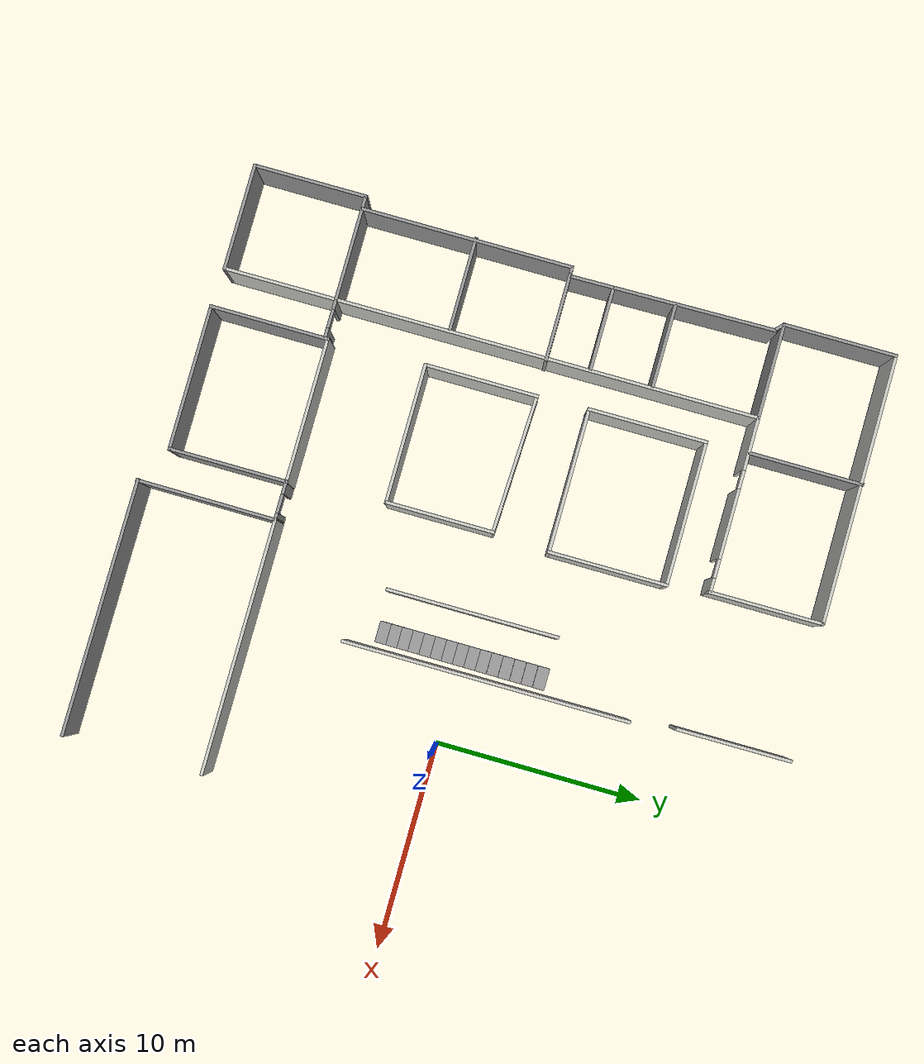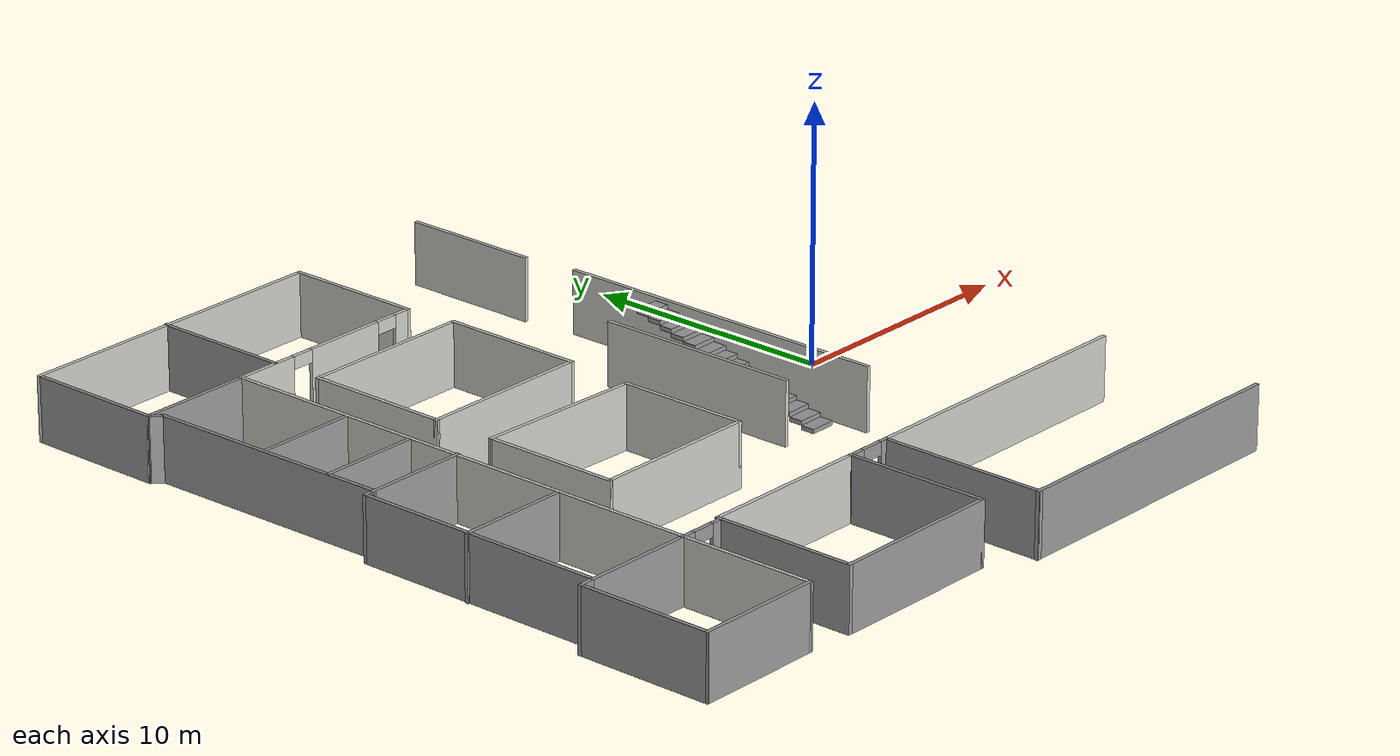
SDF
<sdf version="1.6">
 <model name="b1">
  <pose>-0.20488 -0.299258 0 0 -0 0</pose>
  <link name="Stairs_0">
   <visual name="Stairs_0_Visual_0">
    <pose>-4.10055 -3.51145 0.083333 0 -0 -3.14159</pose>
    <geometry><box><size>1.0342 0.547943 0.166667</size></box></geometry>
    <material>
     <script><uri>file://media/materials/scripts/gazebo.material</uri><name>Gazebo/Grey</name></script>
     <ambient>1 1 1 1</ambient>
    </material>
   </visual>
   <collision name="Stairs_0_Collision_0">
    <geometry><box><size>1.0342 0.547943 0.166667</size></box></geometry>
    <pose>-4.10055 -3.51145 0.083333 0 -0 -3.14159</pose>
   </collision>
   <visual name="Stairs_0_Visual_1">
    <pose>-4.10055 -2.96351 0.25 0 -0 -3.14159</pose>
    <geometry><box><size>1.0342 0.547943 0.166667</size></box></geometry>
    <material>
     <script><uri>file://media/materials/scripts/gazebo.material</uri><name>Gazebo/Grey</name></script>
     <ambient>1 1 1 1</ambient>
    </material>
   </visual>
   <collision name="Stairs_0_Collision_1">
    <geometry><box><size>1.0342 0.547943 0.166667</size></box></geometry>
    <pose>-4.10055 -2.96351 0.25 0 -0 -3.14159</pose>
   </collision>
   <visual name="Stairs_0_Visual_2">
    <pose>-4.10055 -2.41556 0.416667 0 -0 -3.14159</pose>
    <geometry><box><size>1.0342 0.547943 0.166667</size></box></geometry>
    <material>
     <script><uri>file://media/materials/scripts/gazebo.material</uri><name>Gazebo/Grey</name></script>
     <ambient>1 1 1 1</ambient>
    </material>
   </visual>
   <collision name="Stairs_0_Collision_2">
    <geometry><box><size>1.0342 0.547943 0.166667</size></box></geometry>
    <pose>-4.10055 -2.41556 0.416667 0 -0 -3.14159</pose>
   </collision>
   <visual name="Stairs_0_Visual_3">
    <pose>-4.10055 -1.86762 0.583333 0 -0 -3.14159</pose>
    <geometry><box><size>1.0342 0.547943 0.166667</size></box></geometry>
    <material>
     <script><uri>file://media/materials/scripts/gazebo.material</uri><name>Gazebo/Grey</name></script>
     <ambient>1 1 1 1</ambient>
    </material>
   </visual>
   <collision name="Stairs_0_Collision_3">
    <geometry><box><size>1.0342 0.547943 0.166667</size></box></geometry>
    <pose>-4.10055 -1.86762 0.583333 0 -0 -3.14159</pose>
   </collision>
   <visual name="Stairs_0_Visual_4">
    <pose>-4.10055 -1.31967 0.75 0 -0 -3.14159</pose>
    <geometry><box><size>1.0342 0.547943 0.166667</size></box></geometry>
    <material>
     <script><uri>file://media/materials/scripts/gazebo.material</uri><name>Gazebo/Grey</name></script>
     <ambient>1 1 1 1</ambient>
    </material>
   </visual>
   <collision name="Stairs_0_Collision_4">
    <geometry><box><size>1.0342 0.547943 0.166667</size></box></geometry>
    <pose>-4.10055 -1.31967 0.75 0 -0 -3.14159</pose>
   </collision>
   <visual name="Stairs_0_Visual_5">
    <pose>-4.10055 -0.771732 0.916667 0 -0 -3.14159</pose>
    <geometry><box><size>1.0342 0.547943 0.166667</size></box></geometry>
    <material>
     <script><uri>file://media/materials/scripts/gazebo.material</uri><name>Gazebo/Grey</name></script>
     <ambient>1 1 1 1</ambient>
    </material>
   </visual>
   <collision name="Stairs_0_Collision_5">
    <geometry><box><size>1.0342 0.547943 0.166667</size></box></geometry>
    <pose>-4.10055 -0.771732 0.916667 0 -0 -3.14159</pose>
   </collision>
   <visual name="Stairs_0_Visual_6">
    <pose>-4.10055 -0.223788 1.08333 0 -0 -3.14159</pose>
    <geometry><box><size>1.0342 0.547943 0.166667</size></box></geometry>
    <material>
     <script><uri>file://media/materials/scripts/gazebo.material</uri><name>Gazebo/Grey</name></script>
     <ambient>1 1 1 1</ambient>
    </material>
   </visual>
   <collision name="Stairs_0_Collision_6">
    <geometry><box><size>1.0342 0.547943 0.166667</size></box></geometry>
    <pose>-4.10055 -0.223788 1.08333 0 -0 -3.14159</pose>
   </collision>
   <visual name="Stairs_0_Visual_7">
    <pose>-4.10055 0.324155 1.25 0 -0 -3.14159</pose>
    <geometry><box><size>1.0342 0.547943 0.166667</size></box></geometry>
    <material>
     <script><uri>file://media/materials/scripts/gazebo.material</uri><name>Gazebo/Grey</name></script>
     <ambient>1 1 1 1</ambient>
    </material>
   </visual>
   <collision name="Stairs_0_Collision_7">
    <geometry><box><size>1.0342 0.547943 0.166667</size></box></geometry>
    <pose>-4.10055 0.324155 1.25 0 -0 -3.14159</pose>
   </collision>
   <visual name="Stairs_0_Visual_8">
    <pose>-4.10055 0.872098 1.41667 0 -0 -3.14159</pose>
    <geometry><box><size>1.0342 0.547943 0.166667</size></box></geometry>
    <material>
     <script><uri>file://media/materials/scripts/gazebo.material</uri><name>Gazebo/Grey</name></script>
     <ambient>1 1 1 1</ambient>
    </material>
   </visual>
   <collision name="Stairs_0_Collision_8">
    <geometry><box><size>1.0342 0.547943 0.166667</size></box></geometry>
    <pose>-4.10055 0.872098 1.41667 0 -0 -3.14159</pose>
   </collision>
   <visual name="Stairs_0_Visual_9">
    <pose>-4.10055 1.42004 1.58333 0 -0 -3.14159</pose>
    <geometry><box><size>1.0342 0.547943 0.166667</size></box></geometry>
    <material>
     <script><uri>file://media/materials/scripts/gazebo.material</uri><name>Gazebo/Grey</name></script>
     <ambient>1 1 1 1</ambient>
    </material>
   </visual>
   <collision name="Stairs_0_Collision_9">
    <geometry><box><size>1.0342 0.547943 0.166667</size></box></geometry>
    <pose>-4.10055 1.42004 1.58333 0 -0 -3.14159</pose>
   </collision>
   <visual name="Stairs_0_Visual_10">
    <pose>-4.10055 1.96799 1.75 0 -0 -3.14159</pose>
    <geometry><box><size>1.0342 0.547943 0.166667</size></box></geometry>
    <material>
     <script><uri>file://media/materials/scripts/gazebo.material</uri><name>Gazebo/Grey</name></script>
     <ambient>1 1 1 1</ambient>
    </material>
   </visual>
   <collision name="Stairs_0_Collision_10">
    <geometry><box><size>1.0342 0.547943 0.166667</size></box></geometry>
    <pose>-4.10055 1.96799 1.75 0 -0 -3.14159</pose>
   </collision>
   <visual name="Stairs_0_Visual_11">
    <pose>-4.10055 2.51593 1.91667 0 -0 -3.14159</pose>
    <geometry><box><size>1.0342 0.547943 0.166667</size></box></geometry>
    <material>
     <script><uri>file://media/materials/scripts/gazebo.material</uri><name>Gazebo/Grey</name></script>
     <ambient>1 1 1 1</ambient>
    </material>
   </visual>
   <collision name="Stairs_0_Collision_11">
    <geometry><box><size>1.0342 0.547943 0.166667</size></box></geometry>
    <pose>-4.10055 2.51593 1.91667 0 -0 -3.14159</pose>
   </collision>
   <visual name="Stairs_0_Visual_12">
    <pose>-4.10055 3.06387 2.08333 0 -0 -3.14159</pose>
    <geometry><box><size>1.0342 0.547943 0.166667</size></box></geometry>
    <material>
     <script><uri>file://media/materials/scripts/gazebo.material</uri><name>Gazebo/Grey</name></script>
     <ambient>1 1 1 1</ambient>
    </material>
   </visual>
   <collision name="Stairs_0_Collision_12">
    <geometry><box><size>1.0342 0.547943 0.166667</size></box></geometry>
    <pose>-4.10055 3.06387 2.08333 0 -0 -3.14159</pose>
   </collision>
   <visual name="Stairs_0_Visual_13">
    <pose>-4.10055 3.61181 2.25 0 -0 -3.14159</pose>
    <geometry><box><size>1.0342 0.547943 0.166667</size></box></geometry>
    <material>
     <script><uri>file://media/materials/scripts/gazebo.material</uri><name>Gazebo/Grey</name></script>
     <ambient>1 1 1 1</ambient>
    </material>
   </visual>
   <collision name="Stairs_0_Collision_13">
    <geometry><box><size>1.0342 0.547943 0.166667</size></box></geometry>
    <pose>-4.10055 3.61181 2.25 0 -0 -3.14159</pose>
   </collision>
   <visual name="Stairs_0_Visual_14">
    <pose>-4.10055 4.15976 2.41667 0 -0 -3.14159</pose>
    <geometry><box><size>1.0342 0.547943 0.166667</size></box></geometry>
    <material>
     <script><uri>file://media/materials/scripts/gazebo.material</uri><name>Gazebo/Grey</name></script>
     <ambient>1 1 1 1</ambient>
    </material>
   </visual>
   <collision name="Stairs_0_Collision_14">
    <geometry><box><size>1.0342 0.547943 0.166667</size></box></geometry>
    <pose>-4.10055 4.15976 2.41667 0 -0 -3.14159</pose>
   </collision>
  </link>
  <link name="Wall_0">
   <collision name="Wall_0_Collision">
    <geometry><box><size>25.75 0.15 2.5</size></box></geometry>
    <pose>0 0 1.25 0 -0 0</pose>
   </collision>
   <visual name="Wall_0_Visual">
    <pose>0 0 1.25 0 -0 0</pose>
    <geometry><box><size>25.75 0.15 2.5</size></box></geometry>
    <material>
     <script><uri>file://media/materials/scripts/gazebo.material</uri><name>Gazebo/CeilingTiled</name></script>
     <ambient>1 1 1 1</ambient>
    </material>
   </visual>
   <pose>-18.3333 -2.23544 0 0 0 -1.5708</pose>
  </link>
  <link name="Wall_10">
   <collision name="Wall_10_Collision">
    <geometry><box><size>12.2312 0.15 2.5</size></box></geometry>
    <pose>0 0 1.25 0 -0 0</pose>
   </collision>
   <visual name="Wall_10_Visual">
    <pose>0 0 1.25 0 -0 0</pose>
    <geometry><box><size>12.2312 0.15 2.5</size></box></geometry>
    <material>
     <script><uri>file://media/materials/scripts/gazebo.material</uri><name>Gazebo/CeilingTiled</name></script>
     <ambient>1 1 1 1</ambient>
    </material>
   </visual>
   <pose>-1.74049 -9.5555 0 0 -0 0</pose>
  </link>
  <link name="Wall_12">
   <collision name="Wall_12_Collision">
    <geometry><box><size>12.2877 0.15 2.5</size></box></geometry>
    <pose>0 0 1.25 0 -0 0</pose>
   </collision>
   <visual name="Wall_12_Visual">
    <pose>0 0 1.25 0 -0 0</pose>
    <geometry><box><size>12.2877 0.15 2.5</size></box></geometry>
    <material>
     <script><uri>file://media/materials/scripts/gazebo.material</uri><name>Gazebo/Grey</name></script>
     <ambient>1 1 1 1</ambient>
    </material>
   </visual>
   <pose>-1.74989 -16.1555 0 0 -0 3.13849</pose>
  </link>
  <link name="Wall_13">
   <collision name="Wall_13_Collision">
    <geometry><box><size>6.75 0.15 2.5</size></box></geometry>
    <pose>0 0 1.25 0 -0 0</pose>
   </collision>
   <visual name="Wall_13_Visual">
    <pose>0 0 1.25 0 -0 0</pose>
    <geometry><box><size>6.75 0.15 2.5</size></box></geometry>
    <material>
     <script><uri>file://media/materials/scripts/gazebo.material</uri><name>Gazebo/Grey</name></script>
     <ambient>1 1 1 1</ambient>
    </material>
   </visual>
   <pose>-7.78109 -12.8555 0 0 -0 1.5651</pose>
  </link>
  <link name="Wall_2">
   <collision name="Wall_2_Collision">
    <geometry><box><size>5.5 0.15 2.5</size></box></geometry>
    <pose>0 0 1.25 0 -0 0</pose>
   </collision>
   <visual name="Wall_2_Visual">
    <pose>0 0 1.25 0 -0 0</pose>
    <geometry><box><size>5.5 0.15 2.5</size></box></geometry>
    <material>
     <script><uri>file://media/materials/scripts/gazebo.material</uri><name>Gazebo/CeilingTiled</name></script>
     <ambient>1 1 1 1</ambient>
    </material>
   </visual>
   <pose>-3.54517 13.4609 0 0 0 -1.5708</pose>
  </link>
  <link name="Wall_21">
   <collision name="Wall_21_Collision">
    <geometry><box><size>13.75 0.15 2.5</size></box></geometry>
    <pose>0 0 1.25 0 -0 0</pose>
   </collision>
   <visual name="Wall_21_Visual">
    <pose>0 0 1.25 0 -0 0</pose>
    <geometry><box><size>13.75 0.15 2.5</size></box></geometry>
    <material>
     <script><uri>file://media/materials/scripts/gazebo.material</uri><name>Gazebo/CeilingTiled</name></script>
     <ambient>1 1 1 1</ambient>
    </material>
   </visual>
   <pose>-3.26078 1.76065 0 0 -0 1.5708</pose>
  </link>
  <link name="Wall_25">
   <pose>-14.1583 10.5646 0 0 -0 0</pose>
   <visual name="Wall_25_Visual_0">
    <pose>-2.95406 0 1.25 0 -0 0</pose>
    <geometry><box><size>2.59187 0.15 2.5</size></box></geometry>
    <material>
     <script><uri>file://media/materials/scripts/gazebo.material</uri><name>Gazebo/CeilingTiled</name></script>
     <ambient>1 1 1 1</ambient>
    </material>
   </visual>
   <collision name="Wall_25_Collision_0">
    <geometry><box><size>2.59187 0.15 2.5</size></box></geometry>
    <pose>-2.95406 0 1.25 0 -0 0</pose>
   </collision>
   <visual name="Wall_25_Visual_1">
    <pose>0.915135 0 1.25 0 -0 0</pose>
    <geometry><box><size>3.34653 0.15 2.5</size></box></geometry>
    <material>
     <script><uri>file://media/materials/scripts/gazebo.material</uri><name>Gazebo/CeilingTiled</name></script>
     <ambient>1 1 1 1</ambient>
    </material>
   </visual>
   <collision name="Wall_25_Collision_1">
    <geometry><box><size>3.34653 0.15 2.5</size></box></geometry>
    <pose>0.915135 0 1.25 0 -0 0</pose>
   </collision>
   <visual name="Wall_25_Visual_2">
    <pose>3.8692 0 1.25 0 -0 0</pose>
    <geometry><box><size>0.7616 0.15 2.5</size></box></geometry>
    <material>
     <script><uri>file://media/materials/scripts/gazebo.material</uri><name>Gazebo/CeilingTiled</name></script>
     <ambient>1 1 1 1</ambient>
    </material>
   </visual>
   <collision name="Wall_25_Collision_2">
    <geometry><box><size>0.7616 0.15 2.5</size></box></geometry>
    <pose>3.8692 0 1.25 0 -0 0</pose>
   </collision>
   <visual name="Wall_25_Visual_3">
    <pose>-1.20813 0 2.25 0 -0 0</pose>
    <geometry><box><size>0.9 0.15 0.5</size></box></geometry>
    <material>
     <script><uri>file://media/materials/scripts/gazebo.material</uri><name>Gazebo/CeilingTiled</name></script>
     <ambient>1 1 1 1</ambient>
    </material>
   </visual>
   <collision name="Wall_25_Collision_3">
    <geometry><box><size>0.9 0.15 0.5</size></box></geometry>
    <pose>-1.20813 0 2.25 0 -0 0</pose>
   </collision>
   <visual name="Wall_25_Visual_4">
    <pose>3.0384 0 2.25 0 -0 0</pose>
    <geometry><box><size>0.9 0.15 0.5</size></box></geometry>
    <material>
     <script><uri>file://media/materials/scripts/gazebo.material</uri><name>Gazebo/CeilingTiled</name></script>
     <ambient>1 1 1 1</ambient>
    </material>
   </visual>
   <collision name="Wall_25_Collision_4">
    <geometry><box><size>0.9 0.15 0.5</size></box></geometry>
    <pose>3.0384 0 2.25 0 -0 0</pose>
   </collision>
  </link>
  <link name="Wall_26">
   <collision name="Wall_26_Collision">
    <geometry><box><size>5.5 0.15 2.5</size></box></geometry>
    <pose>0 0 1.25 0 -0 0</pose>
   </collision>
   <visual name="Wall_26_Visual">
    <pose>0 0 1.25 0 -0 0</pose>
    <geometry><box><size>5.5 0.15 2.5</size></box></geometry>
    <material>
     <script><uri>file://media/materials/scripts/gazebo.material</uri><name>Gazebo/CeilingTiled</name></script>
     <ambient>1 1 1 1</ambient>
    </material>
   </visual>
   <pose>-9.98326 13.2396 0 0 -0 1.5708</pose>
  </link>
  <link name="Wall_27">
   <collision name="Wall_27_Collision">
    <geometry><box><size>13 0.15 2.5</size></box></geometry>
    <pose>0 0 1.25 0 -0 0</pose>
   </collision>
   <visual name="Wall_27_Visual">
    <pose>0 0 1.25 0 -0 0</pose>
    <geometry><box><size>13 0.15 2.5</size></box></geometry>
    <material>
     <script><uri>file://media/materials/scripts/gazebo.material</uri><name>Gazebo/CeilingTiled</name></script>
     <ambient>1 1 1 1</ambient>
    </material>
   </visual>
   <pose>-16.4083 15.9146 0 0 -0 3.14159</pose>
  </link>
  <link name="Wall_29">
   <collision name="Wall_29_Collision">
    <geometry><box><size>5.5 0.15 2.5</size></box></geometry>
    <pose>0 0 1.25 0 -0 0</pose>
   </collision>
   <visual name="Wall_29_Visual">
    <pose>0 0 1.25 0 -0 0</pose>
    <geometry><box><size>5.5 0.15 2.5</size></box></geometry>
    <material>
     <script><uri>file://media/materials/scripts/gazebo.material</uri><name>Gazebo/CeilingTiled</name></script>
     <ambient>1 1 1 1</ambient>
    </material>
   </visual>
   <pose>-16.5334 -2.20008 0 0 0 -1.5708</pose>
  </link>
  <link name="Wall_30">
   <collision name="Wall_30_Collision">
    <geometry><box><size>6.75 0.15 2.5</size></box></geometry>
    <pose>0 0 1.25 0 -0 0</pose>
   </collision>
   <visual name="Wall_30_Visual">
    <pose>0 0 1.25 0 -0 0</pose>
    <geometry><box><size>6.75 0.15 2.5</size></box></geometry>
    <material>
     <script><uri>file://media/materials/scripts/gazebo.material</uri><name>Gazebo/CeilingTiled</name></script>
     <ambient>1 1 1 1</ambient>
    </material>
   </visual>
   <pose>-13.2334 -4.87508 0 0 -0 0</pose>
  </link>
  <link name="Wall_31">
   <collision name="Wall_31_Collision">
    <geometry><box><size>5.25 0.15 2.5</size></box></geometry>
    <pose>0 0 1.25 0 -0 0</pose>
   </collision>
   <visual name="Wall_31_Visual">
    <pose>0 0 1.25 0 -0 0</pose>
    <geometry><box><size>5.25 0.15 2.5</size></box></geometry>
    <material>
     <script><uri>file://media/materials/scripts/gazebo.material</uri><name>Gazebo/CeilingTiled</name></script>
     <ambient>1 1 1 1</ambient>
    </material>
   </visual>
   <pose>-9.93335 -2.32508 0 0 -0 1.5708</pose>
  </link>
  <link name="Wall_32">
   <collision name="Wall_32_Collision">
    <geometry><box><size>6.75473 0.15 2.5</size></box></geometry>
    <pose>0 0 1.25 0 -0 0</pose>
   </collision>
   <visual name="Wall_32_Visual">
    <pose>0 0 1.25 0 -0 0</pose>
    <geometry><box><size>6.75473 0.15 2.5</size></box></geometry>
    <material>
     <script><uri>file://media/materials/scripts/gazebo.material</uri><name>Gazebo/CeilingTiled</name></script>
     <ambient>1 1 1 1</ambient>
    </material>
   </visual>
   <pose>-13.2334 0.349923 0 0 -0 3.10373</pose>
  </link>
  <link name="Wall_34">
   <collision name="Wall_34_Collision">
    <geometry><box><size>7 0.15 2.5</size></box></geometry>
    <pose>0 0 1.25 0 -0 0</pose>
   </collision>
   <visual name="Wall_34_Visual">
    <pose>0 0 1.25 0 -0 0</pose>
    <geometry><box><size>7 0.15 2.5</size></box></geometry>
    <material>
     <script><uri>file://media/materials/scripts/gazebo.material</uri><name>Gazebo/CeilingTiled</name></script>
     <ambient>1 1 1 1</ambient>
    </material>
   </visual>
   <pose>-13.1771 2.95107 0 0 -0 0</pose>
  </link>
  <link name="Wall_35">
   <collision name="Wall_35_Collision">
    <geometry><box><size>5.75 0.15 2.5</size></box></geometry>
    <pose>0 0 1.25 0 -0 0</pose>
   </collision>
   <visual name="Wall_35_Visual">
    <pose>0 0 1.25 0 -0 0</pose>
    <geometry><box><size>5.75 0.15 2.5</size></box></geometry>
    <material>
     <script><uri>file://media/materials/scripts/gazebo.material</uri><name>Gazebo/CeilingTiled</name></script>
     <ambient>1 1 1 1</ambient>
    </material>
   </visual>
   <pose>-9.75214 5.75107 0 0 -0 1.5708</pose>
  </link>
  <link name="Wall_36">
   <collision name="Wall_36_Collision">
    <geometry><box><size>7 0.15 2.5</size></box></geometry>
    <pose>0 0 1.25 0 -0 0</pose>
   </collision>
   <visual name="Wall_36_Visual">
    <pose>0 0 1.25 0 -0 0</pose>
    <geometry><box><size>7 0.15 2.5</size></box></geometry>
    <material>
     <script><uri>file://media/materials/scripts/gazebo.material</uri><name>Gazebo/CeilingTiled</name></script>
     <ambient>1 1 1 1</ambient>
    </material>
   </visual>
   <pose>-13.1771 8.55107 0 0 -0 3.14159</pose>
  </link>
  <link name="Wall_37">
   <collision name="Wall_37_Collision">
    <geometry><box><size>5.75 0.15 2.5</size></box></geometry>
    <pose>0 0 1.25 0 -0 0</pose>
   </collision>
   <visual name="Wall_37_Visual">
    <pose>0 0 1.25 0 -0 0</pose>
    <geometry><box><size>5.75 0.15 2.5</size></box></geometry>
    <material>
     <script><uri>file://media/materials/scripts/gazebo.material</uri><name>Gazebo/CeilingTiled</name></script>
     <ambient>1 1 1 1</ambient>
    </material>
   </visual>
   <pose>-16.6021 5.75107 0 0 0 -1.5708</pose>
  </link>
  <link name="Wall_39">
   <collision name="Wall_39_Collision">
    <geometry><box><size>8.25 0.15 2.5</size></box></geometry>
    <pose>0 0 1.25 0 -0 0</pose>
   </collision>
   <visual name="Wall_39_Visual">
    <pose>0 0 1.25 0 -0 0</pose>
    <geometry><box><size>8.25 0.15 2.5</size></box></geometry>
    <material>
     <script><uri>file://media/materials/scripts/gazebo.material</uri><name>Gazebo/CeilingTiled</name></script>
     <ambient>1 1 1 1</ambient>
    </material>
   </visual>
   <pose>-6.09336 0.330139 0 0 0 -1.5708</pose>
  </link>
  <link name="Wall_41">
   <pose>-17.4655 -9.67752 0 0 -0 0</pose>
   <visual name="Wall_41_Visual_0">
    <pose>-0.695922 0 1.25 0 -0 0</pose>
    <geometry><box><size>0.608155 0.15 2.5</size></box></geometry>
    <material>
     <script><uri>file://media/materials/scripts/gazebo.material</uri><name>Gazebo/Grey</name></script>
     <ambient>1 1 1 1</ambient>
    </material>
   </visual>
   <collision name="Wall_41_Collision_0">
    <geometry><box><size>0.608155 0.15 2.5</size></box></geometry>
    <pose>-0.695922 0 1.25 0 -0 0</pose>
   </collision>
   <visual name="Wall_41_Visual_1">
    <pose>0.754078 0 1.25 0 -0 0</pose>
    <geometry><box><size>0.491845 0.15 2.5</size></box></geometry>
    <material>
     <script><uri>file://media/materials/scripts/gazebo.material</uri><name>Gazebo/Grey</name></script>
     <ambient>1 1 1 1</ambient>
    </material>
   </visual>
   <collision name="Wall_41_Collision_1">
    <geometry><box><size>0.491845 0.15 2.5</size></box></geometry>
    <pose>0.754078 0 1.25 0 -0 0</pose>
   </collision>
   <visual name="Wall_41_Visual_2">
    <pose>0.058155 0 2.25 0 -0 0</pose>
    <geometry><box><size>0.9 0.15 0.5</size></box></geometry>
    <material>
     <script><uri>file://media/materials/scripts/gazebo.material</uri><name>Gazebo/Grey</name></script>
     <ambient>1 1 1 1</ambient>
    </material>
   </visual>
   <collision name="Wall_41_Collision_2">
    <geometry><box><size>0.9 0.15 0.5</size></box></geometry>
    <pose>0.058155 0 2.25 0 -0 0</pose>
   </collision>
  </link>
  <link name="Wall_44">
   <pose>-8.68728 -9.5555 0 0 -0 3.14159</pose>
   <visual name="Wall_44_Visual_0">
    <pose>-0.794652 0 1.25 0 -0 0</pose>
    <geometry><box><size>0.410696 0.15 2.5</size></box></geometry>
    <material>
     <script><uri>file://media/materials/scripts/gazebo.material</uri><name>Gazebo/Grey</name></script>
     <ambient>1 1 1 1</ambient>
    </material>
   </visual>
   <collision name="Wall_44_Collision_0">
    <geometry><box><size>0.410696 0.15 2.5</size></box></geometry>
    <pose>-0.794652 0 1.25 0 -0 0</pose>
   </collision>
   <visual name="Wall_44_Visual_1">
    <pose>0.655348 0 1.25 0 -0 0</pose>
    <geometry><box><size>0.689304 0.15 2.5</size></box></geometry>
    <material>
     <script><uri>file://media/materials/scripts/gazebo.material</uri><name>Gazebo/Grey</name></script>
     <ambient>1 1 1 1</ambient>
    </material>
   </visual>
   <collision name="Wall_44_Collision_1">
    <geometry><box><size>0.689304 0.15 2.5</size></box></geometry>
    <pose>0.655348 0 1.25 0 -0 0</pose>
   </collision>
   <visual name="Wall_44_Visual_2">
    <pose>-0.139304 0 2.25 0 -0 0</pose>
    <geometry><box><size>0.9 0.15 0.5</size></box></geometry>
    <material>
     <script><uri>file://media/materials/scripts/gazebo.material</uri><name>Gazebo/Grey</name></script>
     <ambient>1 1 1 1</ambient>
    </material>
   </visual>
   <collision name="Wall_44_Collision_2">
    <geometry><box><size>0.9 0.15 0.5</size></box></geometry>
    <pose>-0.139304 0 2.25 0 -0 0</pose>
   </collision>
  </link>
  <link name="Wall_5">
   <collision name="Wall_5_Collision">
    <geometry><box><size>7.01667 0.15 2.5</size></box></geometry>
    <pose>0 0 1.25 0 -0 0</pose>
   </collision>
   <visual name="Wall_5_Visual">
    <pose>0 0 1.25 0 -0 0</pose>
    <geometry><box><size>7.01667 0.15 2.5</size></box></geometry>
    <material>
     <script><uri>file://media/materials/scripts/gazebo.material</uri><name>Gazebo/Grey</name></script>
     <ambient>1 1 1 1</ambient>
    </material>
   </visual>
   <pose>-13.0292 -15.1411 0 0 -0 3.14159</pose>
  </link>
  <link name="Wall_6">
   <collision name="Wall_6_Collision">
    <geometry><box><size>5.75 0.15 2.5</size></box></geometry>
    <pose>0 0 1.25 0 -0 0</pose>
   </collision>
   <visual name="Wall_6_Visual">
    <pose>0 0 1.25 0 -0 0</pose>
    <geometry><box><size>5.75 0.15 2.5</size></box></geometry>
    <material>
     <script><uri>file://media/materials/scripts/gazebo.material</uri><name>Gazebo/Grey</name></script>
     <ambient>1 1 1 1</ambient>
    </material>
   </visual>
   <pose>-16.4626 -12.3411 0 0 -0 1.5708</pose>
  </link>
  <link name="Wall_61">
   <collision name="Wall_61_Collision">
    <geometry><box><size>5.5 0.15 2.5</size></box></geometry>
    <pose>0 0 1.25 0 -0 0</pose>
   </collision>
   <visual name="Wall_61_Visual">
    <pose>0 0 1.25 0 -0 0</pose>
    <geometry><box><size>5.5 0.15 2.5</size></box></geometry>
    <material>
     <script><uri>file://media/materials/scripts/gazebo.material</uri><name>Gazebo/Grey</name></script>
     <ambient>1 1 1 1</ambient>
    </material>
   </visual>
   <pose>-22.8333 13.2396 0 0 0 -1.5708</pose>
  </link>
  <link name="Wall_62">
   <collision name="Wall_62_Collision">
    <geometry><box><size>0.573007 0.15 2.5</size></box></geometry>
    <pose>0 0 1.25 0 -0 0</pose>
   </collision>
   <visual name="Wall_62_Visual">
    <pose>0 0 1.25 0 -0 0</pose>
    <geometry><box><size>0.573007 0.15 2.5</size></box></geometry>
    <material>
     <script><uri>file://media/materials/scripts/gazebo.material</uri><name>Gazebo/Grey</name></script>
     <ambient>1 1 1 1</ambient>
    </material>
   </visual>
   <pose>-22.6803 10.4185 0 0 0 -0.762155</pose>
  </link>
  <link name="Wall_63">
   <collision name="Wall_63_Collision">
    <geometry><box><size>10.0009 0.15 2.5</size></box></geometry>
    <pose>0 0 1.25 0 -0 0</pose>
   </collision>
   <visual name="Wall_63_Visual">
    <pose>0 0 1.25 0 -0 0</pose>
    <geometry><box><size>10.0009 0.15 2.5</size></box></geometry>
    <material>
     <script><uri>file://media/materials/scripts/gazebo.material</uri><name>Gazebo/Grey</name></script>
     <ambient>1 1 1 1</ambient>
    </material>
   </visual>
   <pose>-22.3905 5.34748 0 0 0 -1.55691</pose>
  </link>
  <link name="Wall_64">
   <collision name="Wall_64_Collision">
    <geometry><box><size>0.5 0.15 2.5</size></box></geometry>
    <pose>0 0 1.25 0 -0 0</pose>
   </collision>
   <visual name="Wall_64_Visual">
    <pose>0 0 1.25 0 -0 0</pose>
    <geometry><box><size>0.5 0.15 2.5</size></box></geometry>
    <material>
     <script><uri>file://media/materials/scripts/gazebo.material</uri><name>Gazebo/Grey</name></script>
     <ambient>1 1 1 1</ambient>
    </material>
   </visual>
   <pose>-22.5655 0.422481 0 0 -0 3.14159</pose>
  </link>
  <link name="Wall_66">
   <collision name="Wall_66_Collision">
    <geometry><box><size>10.25 0.15 2.5</size></box></geometry>
    <pose>0 0 1.25 0 -0 0</pose>
   </collision>
   <visual name="Wall_66_Visual">
    <pose>0 0 1.25 0 -0 0</pose>
    <geometry><box><size>10.25 0.15 2.5</size></box></geometry>
    <material>
     <script><uri>file://media/materials/scripts/gazebo.material</uri><name>Gazebo/Grey</name></script>
     <ambient>1 1 1 1</ambient>
    </material>
   </visual>
   <pose>-22.7405 -4.62752 0 0 0 -1.5708</pose>
  </link>
  <link name="Wall_67">
   <collision name="Wall_67_Collision">
    <geometry><box><size>0.75 0.15 2.5</size></box></geometry>
    <pose>0 0 1.25 0 -0 0</pose>
   </collision>
   <visual name="Wall_67_Visual">
    <pose>0 0 1.25 0 -0 0</pose>
    <geometry><box><size>0.75 0.15 2.5</size></box></geometry>
    <material>
     <script><uri>file://media/materials/scripts/gazebo.material</uri><name>Gazebo/Grey</name></script>
     <ambient>1 1 1 1</ambient>
    </material>
   </visual>
   <pose>-23.0405 -9.67752 0 0 -0 3.14159</pose>
  </link>
  <link name="Wall_68">
   <collision name="Wall_68_Collision">
    <geometry><box><size>5.5 0.15 2.5</size></box></geometry>
    <pose>0 0 1.25 0 -0 0</pose>
   </collision>
   <visual name="Wall_68_Visual">
    <pose>0 0 1.25 0 -0 0</pose>
    <geometry><box><size>5.5 0.15 2.5</size></box></geometry>
    <material>
     <script><uri>file://media/materials/scripts/gazebo.material</uri><name>Gazebo/Grey</name></script>
     <ambient>1 1 1 1</ambient>
    </material>
   </visual>
   <pose>-23.3405 -12.3525 0 0 0 -1.5708</pose>
  </link>
  <link name="Wall_69">
   <collision name="Wall_69_Collision">
    <geometry><box><size>5.15724 0.15 2.5</size></box></geometry>
    <pose>0 0 1.25 0 -0 0</pose>
   </collision>
   <visual name="Wall_69_Visual">
    <pose>0 0 1.25 0 -0 0</pose>
    <geometry><box><size>5.15724 0.15 2.5</size></box></geometry>
    <material>
     <script><uri>file://media/materials/scripts/gazebo.material</uri><name>Gazebo/Grey</name></script>
     <ambient>1 1 1 1</ambient>
    </material>
   </visual>
   <pose>-20.8369 -15.0315 0 0 0 -0.001582</pose>
  </link>
  <link name="Wall_7">
   <collision name="Wall_7_Collision">
    <geometry><box><size>7 0.15 2.5</size></box></geometry>
    <pose>0 0 1.25 0 -0 0</pose>
   </collision>
   <visual name="Wall_7_Visual">
    <pose>0 0 1.25 0 -0 0</pose>
    <geometry><box><size>7 0.15 2.5</size></box></geometry>
    <material>
     <script><uri>file://media/materials/scripts/gazebo.material</uri><name>Gazebo/CeilingTiled</name></script>
     <ambient>1 1 1 1</ambient>
    </material>
   </visual>
   <pose>-13.0209 -9.54109 0 0 -0 0</pose>
  </link>
  <link name="Wall_72">
   <collision name="Wall_72_Collision">
    <geometry><box><size>4.5 0.15 2.5</size></box></geometry>
    <pose>0 0 1.25 0 -0 0</pose>
   </collision>
   <visual name="Wall_72_Visual">
    <pose>0 0 1.25 0 -0 0</pose>
    <geometry><box><size>4.5 0.15 2.5</size></box></geometry>
    <material>
     <script><uri>file://media/materials/scripts/gazebo.material</uri><name>Gazebo/Grey</name></script>
     <ambient>1 1 1 1</ambient>
    </material>
   </visual>
   <pose>-20.5655 -9.67752 0 0 -0 0</pose>
  </link>
  <link name="Wall_74">
   <collision name="Wall_74_Collision">
    <geometry><box><size>4.5 0.15 2.5</size></box></geometry>
    <pose>0 0 1.25 0 -0 0</pose>
   </collision>
   <visual name="Wall_74_Visual">
    <pose>0 0 1.25 0 -0 0</pose>
    <geometry><box><size>4.5 0.15 2.5</size></box></geometry>
    <material>
     <script><uri>file://media/materials/scripts/gazebo.material</uri><name>Gazebo/Grey</name></script>
     <ambient>1 1 1 1</ambient>
    </material>
   </visual>
   <pose>-20.6322 -4.22714 0 0 -0 0</pose>
  </link>
  <link name="Wall_76">
   <collision name="Wall_76_Collision">
    <geometry><box><size>4.25 0.15 2.5</size></box></geometry>
    <pose>0 0 1.25 0 -0 0</pose>
   </collision>
   <visual name="Wall_76_Visual">
    <pose>0 0 1.25 0 -0 0</pose>
    <geometry><box><size>4.25 0.15 2.5</size></box></geometry>
    <material>
     <script><uri>file://media/materials/scripts/gazebo.material</uri><name>Gazebo/Grey</name></script>
     <ambient>1 1 1 1</ambient>
    </material>
   </visual>
   <pose>-20.3405 0.422481 0 0 -0 0</pose>
  </link>
  <link name="Wall_78">
   <collision name="Wall_78_Collision">
    <geometry><box><size>4 0.15 2.5</size></box></geometry>
    <pose>0 0 1.25 0 -0 0</pose>
   </collision>
   <visual name="Wall_78_Visual">
    <pose>0 0 1.25 0 -0 0</pose>
    <geometry><box><size>4 0.15 2.5</size></box></geometry>
    <material>
     <script><uri>file://media/materials/scripts/gazebo.material</uri><name>Gazebo/Grey</name></script>
     <ambient>1 1 1 1</ambient>
    </material>
   </visual>
   <pose>-20.365 2.5217 0 0 -0 0</pose>
  </link>
  <link name="Wall_8">
   <collision name="Wall_8_Collision">
    <geometry><box><size>5.75 0.15 2.5</size></box></geometry>
    <pose>0 0 1.25 0 -0 0</pose>
   </collision>
   <visual name="Wall_8_Visual">
    <pose>0 0 1.25 0 -0 0</pose>
    <geometry><box><size>5.75 0.15 2.5</size></box></geometry>
    <material>
     <script><uri>file://media/materials/scripts/gazebo.material</uri><name>Gazebo/Grey</name></script>
     <ambient>1 1 1 1</ambient>
    </material>
   </visual>
   <pose>-9.59588 -12.3411 0 0 0 -1.5708</pose>
  </link>
  <link name="Wall_80">
   <collision name="Wall_80_Collision">
    <geometry><box><size>4 0.15 2.5</size></box></geometry>
    <pose>0 0 1.25 0 -0 0</pose>
   </collision>
   <visual name="Wall_80_Visual">
    <pose>0 0 1.25 0 -0 0</pose>
    <geometry><box><size>4 0.15 2.5</size></box></geometry>
    <material>
     <script><uri>file://media/materials/scripts/gazebo.material</uri><name>Gazebo/Grey</name></script>
     <ambient>1 1 1 1</ambient>
    </material>
   </visual>
   <pose>-20.365 5.49533 0 0 -0 0</pose>
  </link>
  <link name="Wall_82">
   <collision name="Wall_82_Collision">
    <geometry><box><size>4.65 0.15 2.5</size></box></geometry>
    <pose>0 0 1.25 0 -0 0</pose>
   </collision>
   <visual name="Wall_82_Visual">
    <pose>0 0 1.25 0 -0 0</pose>
    <geometry><box><size>4.65 0.15 2.5</size></box></geometry>
    <material>
     <script><uri>file://media/materials/scripts/gazebo.material</uri><name>Gazebo/Grey</name></script>
     <ambient>1 1 1 1</ambient>
    </material>
   </visual>
   <pose>-20.5833 10.5646 0 0 -0 0</pose>
  </link>
  <link name="Wall_84">
   <collision name="Wall_84_Collision">
    <geometry><box><size>5.5 0.15 2.5</size></box></geometry>
    <pose>0 0 1.25 0 -0 0</pose>
   </collision>
   <visual name="Wall_84_Visual">
    <pose>0 0 1.25 0 -0 0</pose>
    <geometry><box><size>5.5 0.15 2.5</size></box></geometry>
    <material>
     <script><uri>file://media/materials/scripts/gazebo.material</uri><name>Gazebo/Grey</name></script>
     <ambient>1 1 1 1</ambient>
    </material>
   </visual>
   <pose>-16.653 13.2927 0 0 0 -1.5708</pose>
  </link>
  <static>1</static>
 </model>
</sdf>
